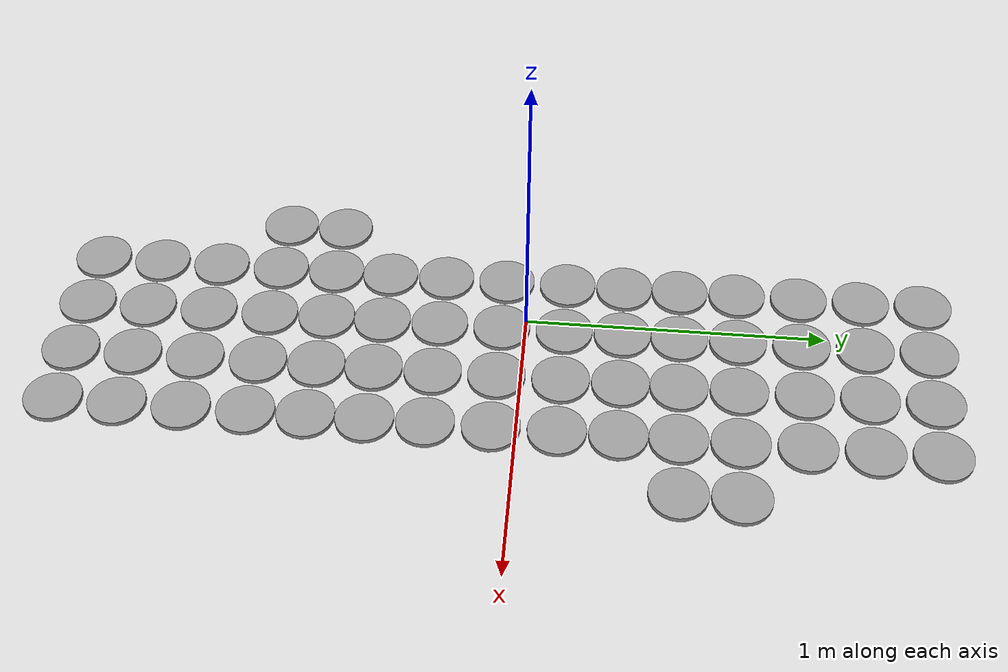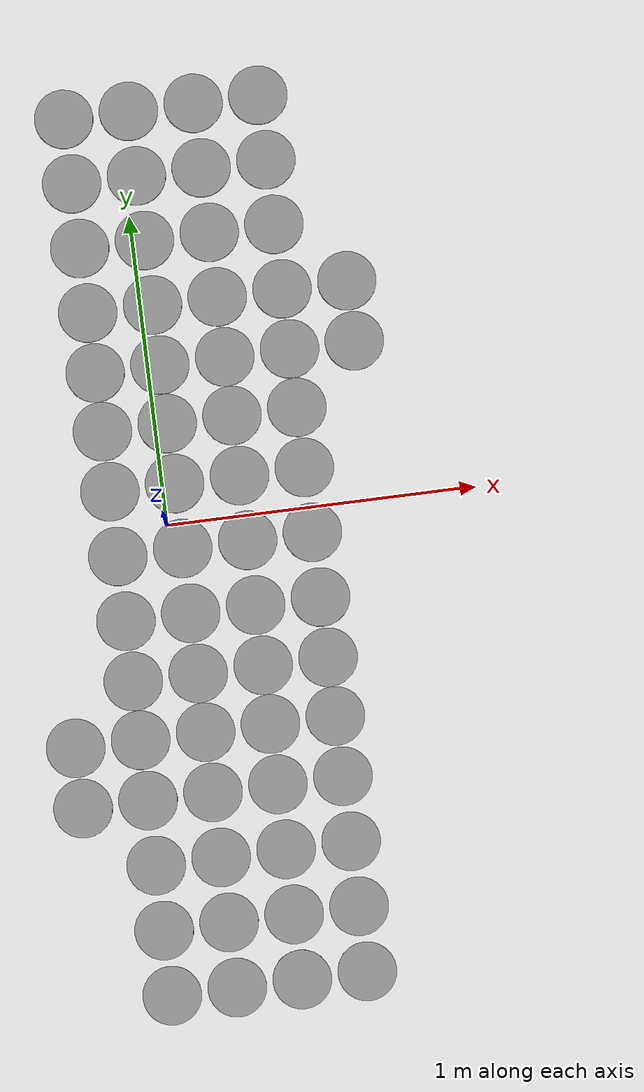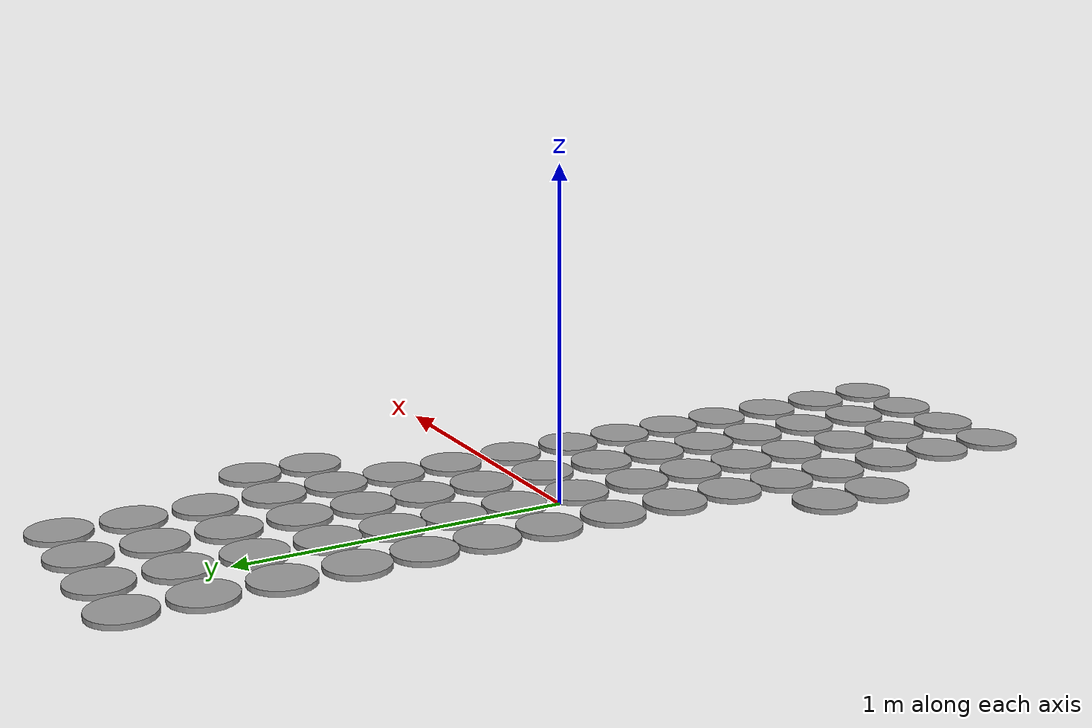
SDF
<sdf version="1.6">
 <world name="default">
  <model name="unit_cylinder_clone_115">
   <pose>-0.17 0.515077 0.008111 0 -0 0</pose>
   <link name="link">
    <inertial>
     <mass>1</mass>
     <inertia><ixx>0.145833</ixx><ixy>0</ixy><ixz>0</ixz><iyy>0.145833</iyy><iyz>0</iyz><izz>0.125</izz></inertia>
    </inertial>
    <collision name="collision">
     <geometry><cylinder><radius>0.0950718</radius><length>0.0162339</length></cylinder></geometry>
     <max_contacts>5</max_contacts>
    </collision>
    <visual name="visual">
     <geometry><cylinder><radius>0.0950718</radius><length>0.0162339</length></cylinder></geometry>
     <material>
      <script><name>Gazebo/Grey</name><uri>file://media/materials/scripts/gazebo.material</uri></script>
     </material>
    </visual>
   </link>
  </model>
  <model name="unit_cylinder_clone_116">
   <pose>-0.17 0.71 0.008111 0 -0 0</pose>
   <link name="link">
    <inertial>
     <mass>1</mass>
     <inertia><ixx>0.145833</ixx><ixy>0</ixy><ixz>0</ixz><iyy>0.145833</iyy><iyz>0</iyz><izz>0.125</izz></inertia>
    </inertial>
    <collision name="collision">
     <geometry><cylinder><radius>0.0950718</radius><length>0.0162339</length></cylinder></geometry>
     <max_contacts>5</max_contacts>
    </collision>
    <visual name="visual">
     <geometry><cylinder><radius>0.0950718</radius><length>0.0162339</length></cylinder></geometry>
     <material>
      <script><name>Gazebo/Grey</name><uri>file://media/materials/scripts/gazebo.material</uri></script>
     </material>
    </visual>
   </link>
  </model>
  <model name="unit_cylinder_clone_117">
   <pose>-0.17 0.92 0.008111 0 -0 0</pose>
   <link name="link">
    <inertial>
     <mass>1</mass>
     <inertia><ixx>0.145833</ixx><ixy>0</ixy><ixz>0</ixz><iyy>0.145833</iyy><iyz>0</iyz><izz>0.125</izz></inertia>
    </inertial>
    <collision name="collision">
     <geometry><cylinder><radius>0.0950718</radius><length>0.0162339</length></cylinder></geometry>
     <max_contacts>5</max_contacts>
    </collision>
    <visual name="visual">
     <geometry><cylinder><radius>0.0950718</radius><length>0.0162339</length></cylinder></geometry>
     <material>
      <script><name>Gazebo/Grey</name><uri>file://media/materials/scripts/gazebo.material</uri></script>
     </material>
    </visual>
   </link>
  </model>
  <model name="unit_cylinder_clone_118">
   <pose>-0.17 1.13 0.008111 0 -0 0</pose>
   <link name="link">
    <inertial>
     <mass>1</mass>
     <inertia><ixx>0.145833</ixx><ixy>0</ixy><ixz>0</ixz><iyy>0.145833</iyy><iyz>0</iyz><izz>0.125</izz></inertia>
    </inertial>
    <collision name="collision">
     <geometry><cylinder><radius>0.0950718</radius><length>0.0162339</length></cylinder></geometry>
     <max_contacts>5</max_contacts>
    </collision>
    <visual name="visual">
     <geometry><cylinder><radius>0.0950718</radius><length>0.0162339</length></cylinder></geometry>
     <material>
      <script><name>Gazebo/Grey</name><uri>file://media/materials/scripts/gazebo.material</uri></script>
     </material>
    </visual>
   </link>
  </model>
  <model name="unit_cylinder_clone_119">
   <pose>-0.17 1.34 0.008111 0 -0 0</pose>
   <link name="link">
    <inertial>
     <mass>1</mass>
     <inertia><ixx>0.145833</ixx><ixy>0</ixy><ixz>0</ixz><iyy>0.145833</iyy><iyz>0</iyz><izz>0.125</izz></inertia>
    </inertial>
    <collision name="collision">
     <geometry><cylinder><radius>0.0950718</radius><length>0.0162339</length></cylinder></geometry>
     <max_contacts>5</max_contacts>
    </collision>
    <visual name="visual">
     <geometry><cylinder><radius>0.0950718</radius><length>0.0162339</length></cylinder></geometry>
     <material>
      <script><name>Gazebo/Grey</name><uri>file://media/materials/scripts/gazebo.material</uri></script>
     </material>
    </visual>
   </link>
  </model>
  <model name="unit_cylinder_clone_120">
   <pose>0.04 0.515077 0.008111 0 -0 0</pose>
   <link name="link">
    <inertial>
     <mass>1</mass>
     <inertia><ixx>0.145833</ixx><ixy>0</ixy><ixz>0</ixz><iyy>0.145833</iyy><iyz>0</iyz><izz>0.125</izz></inertia>
    </inertial>
    <collision name="collision">
     <geometry><cylinder><radius>0.0950718</radius><length>0.0162339</length></cylinder></geometry>
     <max_contacts>5</max_contacts>
    </collision>
    <visual name="visual">
     <geometry><cylinder><radius>0.0950718</radius><length>0.0162339</length></cylinder></geometry>
     <material>
      <script><name>Gazebo/Grey</name><uri>file://media/materials/scripts/gazebo.material</uri></script>
     </material>
    </visual>
   </link>
  </model>
  <model name="unit_cylinder_clone_121">
   <pose>0.04 0.71 0.008111 0 -0 0</pose>
   <link name="link">
    <inertial>
     <mass>1</mass>
     <inertia><ixx>0.145833</ixx><ixy>0</ixy><ixz>0</ixz><iyy>0.145833</iyy><iyz>0</iyz><izz>0.125</izz></inertia>
    </inertial>
    <collision name="collision">
     <geometry><cylinder><radius>0.0950718</radius><length>0.0162339</length></cylinder></geometry>
     <max_contacts>5</max_contacts>
    </collision>
    <visual name="visual">
     <geometry><cylinder><radius>0.0950718</radius><length>0.0162339</length></cylinder></geometry>
     <material>
      <script><name>Gazebo/Grey</name><uri>file://media/materials/scripts/gazebo.material</uri></script>
     </material>
    </visual>
   </link>
  </model>
  <model name="unit_cylinder_clone_122">
   <pose>0.04 0.92 0.008111 0 -0 0</pose>
   <link name="link">
    <inertial>
     <mass>1</mass>
     <inertia><ixx>0.145833</ixx><ixy>0</ixy><ixz>0</ixz><iyy>0.145833</iyy><iyz>0</iyz><izz>0.125</izz></inertia>
    </inertial>
    <collision name="collision">
     <geometry><cylinder><radius>0.0950718</radius><length>0.0162339</length></cylinder></geometry>
     <max_contacts>5</max_contacts>
    </collision>
    <visual name="visual">
     <geometry><cylinder><radius>0.0950718</radius><length>0.0162339</length></cylinder></geometry>
     <material>
      <script><name>Gazebo/Grey</name><uri>file://media/materials/scripts/gazebo.material</uri></script>
     </material>
    </visual>
   </link>
  </model>
  <model name="unit_cylinder_clone_123">
   <pose>0.04 1.13 0.008111 0 -0 0</pose>
   <link name="link">
    <inertial>
     <mass>1</mass>
     <inertia><ixx>0.145833</ixx><ixy>0</ixy><ixz>0</ixz><iyy>0.145833</iyy><iyz>0</iyz><izz>0.125</izz></inertia>
    </inertial>
    <collision name="collision">
     <geometry><cylinder><radius>0.0950718</radius><length>0.0162339</length></cylinder></geometry>
     <max_contacts>5</max_contacts>
    </collision>
    <visual name="visual">
     <geometry><cylinder><radius>0.0950718</radius><length>0.0162339</length></cylinder></geometry>
     <material>
      <script><name>Gazebo/Grey</name><uri>file://media/materials/scripts/gazebo.material</uri></script>
     </material>
    </visual>
   </link>
  </model>
  <model name="unit_cylinder_clone_124">
   <pose>0.04 1.34 0.008111 0 -0 0</pose>
   <link name="link">
    <inertial>
     <mass>1</mass>
     <inertia><ixx>0.145833</ixx><ixy>0</ixy><ixz>0</ixz><iyy>0.145833</iyy><iyz>0</iyz><izz>0.125</izz></inertia>
    </inertial>
    <collision name="collision">
     <geometry><cylinder><radius>0.0950718</radius><length>0.0162339</length></cylinder></geometry>
     <max_contacts>5</max_contacts>
    </collision>
    <visual name="visual">
     <geometry><cylinder><radius>0.0950718</radius><length>0.0162339</length></cylinder></geometry>
     <material>
      <script><name>Gazebo/Grey</name><uri>file://media/materials/scripts/gazebo.material</uri></script>
     </material>
    </visual>
   </link>
  </model>
  <model name="unit_cylinder_clone_125">
   <pose>0.25 0.515077 0.008111 0 -0 0</pose>
   <link name="link">
    <inertial>
     <mass>1</mass>
     <inertia><ixx>0.145833</ixx><ixy>0</ixy><ixz>0</ixz><iyy>0.145833</iyy><iyz>0</iyz><izz>0.125</izz></inertia>
    </inertial>
    <collision name="collision">
     <geometry><cylinder><radius>0.0950718</radius><length>0.0162339</length></cylinder></geometry>
     <max_contacts>5</max_contacts>
    </collision>
    <visual name="visual">
     <geometry><cylinder><radius>0.0950718</radius><length>0.0162339</length></cylinder></geometry>
     <material>
      <script><name>Gazebo/Grey</name><uri>file://media/materials/scripts/gazebo.material</uri></script>
     </material>
    </visual>
   </link>
  </model>
  <model name="unit_cylinder_clone_126">
   <pose>0.25 0.71 0.008111 0 -0 0</pose>
   <link name="link">
    <inertial>
     <mass>1</mass>
     <inertia><ixx>0.145833</ixx><ixy>0</ixy><ixz>0</ixz><iyy>0.145833</iyy><iyz>0</iyz><izz>0.125</izz></inertia>
    </inertial>
    <collision name="collision">
     <geometry><cylinder><radius>0.0950718</radius><length>0.0162339</length></cylinder></geometry>
     <max_contacts>5</max_contacts>
    </collision>
    <visual name="visual">
     <geometry><cylinder><radius>0.0950718</radius><length>0.0162339</length></cylinder></geometry>
     <material>
      <script><name>Gazebo/Grey</name><uri>file://media/materials/scripts/gazebo.material</uri></script>
     </material>
    </visual>
   </link>
  </model>
  <model name="unit_cylinder_clone_127">
   <pose>0.25 0.92 0.008111 0 -0 0</pose>
   <link name="link">
    <inertial>
     <mass>1</mass>
     <inertia><ixx>0.145833</ixx><ixy>0</ixy><ixz>0</ixz><iyy>0.145833</iyy><iyz>0</iyz><izz>0.125</izz></inertia>
    </inertial>
    <collision name="collision">
     <geometry><cylinder><radius>0.0950718</radius><length>0.0162339</length></cylinder></geometry>
     <max_contacts>5</max_contacts>
    </collision>
    <visual name="visual">
     <geometry><cylinder><radius>0.0950718</radius><length>0.0162339</length></cylinder></geometry>
     <material>
      <script><name>Gazebo/Grey</name><uri>file://media/materials/scripts/gazebo.material</uri></script>
     </material>
    </visual>
   </link>
  </model>
  <model name="unit_cylinder_clone_128">
   <pose>0.25 1.13 0.008111 0 -0 0</pose>
   <link name="link">
    <inertial>
     <mass>1</mass>
     <inertia><ixx>0.145833</ixx><ixy>0</ixy><ixz>0</ixz><iyy>0.145833</iyy><iyz>0</iyz><izz>0.125</izz></inertia>
    </inertial>
    <collision name="collision">
     <geometry><cylinder><radius>0.0950718</radius><length>0.0162339</length></cylinder></geometry>
     <max_contacts>5</max_contacts>
    </collision>
    <visual name="visual">
     <geometry><cylinder><radius>0.0950718</radius><length>0.0162339</length></cylinder></geometry>
     <material>
      <script><name>Gazebo/Grey</name><uri>file://media/materials/scripts/gazebo.material</uri></script>
     </material>
    </visual>
   </link>
  </model>
  <model name="unit_cylinder_clone_129">
   <pose>0.25 1.34 0.008111 0 -0 0</pose>
   <link name="link">
    <inertial>
     <mass>1</mass>
     <inertia><ixx>0.145833</ixx><ixy>0</ixy><ixz>0</ixz><iyy>0.145833</iyy><iyz>0</iyz><izz>0.125</izz></inertia>
    </inertial>
    <collision name="collision">
     <geometry><cylinder><radius>0.0950718</radius><length>0.0162339</length></cylinder></geometry>
     <max_contacts>5</max_contacts>
    </collision>
    <visual name="visual">
     <geometry><cylinder><radius>0.0950718</radius><length>0.0162339</length></cylinder></geometry>
     <material>
      <script><name>Gazebo/Grey</name><uri>file://media/materials/scripts/gazebo.material</uri></script>
     </material>
    </visual>
   </link>
  </model>
  <model name="unit_cylinder_clone_130">
   <pose>0.46 0.515077 0.008111 0 -0 0</pose>
   <link name="link">
    <inertial>
     <mass>1</mass>
     <inertia><ixx>0.145833</ixx><ixy>0</ixy><ixz>0</ixz><iyy>0.145833</iyy><iyz>0</iyz><izz>0.125</izz></inertia>
    </inertial>
    <collision name="collision">
     <geometry><cylinder><radius>0.0950718</radius><length>0.0162339</length></cylinder></geometry>
     <max_contacts>5</max_contacts>
    </collision>
    <visual name="visual">
     <geometry><cylinder><radius>0.0950718</radius><length>0.0162339</length></cylinder></geometry>
     <material>
      <script><name>Gazebo/Grey</name><uri>file://media/materials/scripts/gazebo.material</uri></script>
     </material>
    </visual>
   </link>
  </model>
  <model name="unit_cylinder_clone_131">
   <pose>0.46 0.71 0.008111 0 -0 0</pose>
   <link name="link">
    <inertial>
     <mass>1</mass>
     <inertia><ixx>0.145833</ixx><ixy>0</ixy><ixz>0</ixz><iyy>0.145833</iyy><iyz>0</iyz><izz>0.125</izz></inertia>
    </inertial>
    <collision name="collision">
     <geometry><cylinder><radius>0.0950718</radius><length>0.0162339</length></cylinder></geometry>
     <max_contacts>5</max_contacts>
    </collision>
    <visual name="visual">
     <geometry><cylinder><radius>0.0950718</radius><length>0.0162339</length></cylinder></geometry>
     <material>
      <script><name>Gazebo/Grey</name><uri>file://media/materials/scripts/gazebo.material</uri></script>
     </material>
    </visual>
   </link>
  </model>
  <model name="unit_cylinder_clone_132">
   <pose>0.46 0.92 0.008111 0 -0 0</pose>
   <link name="link">
    <inertial>
     <mass>1</mass>
     <inertia><ixx>0.145833</ixx><ixy>0</ixy><ixz>0</ixz><iyy>0.145833</iyy><iyz>0</iyz><izz>0.125</izz></inertia>
    </inertial>
    <collision name="collision">
     <geometry><cylinder><radius>0.0950718</radius><length>0.0162339</length></cylinder></geometry>
     <max_contacts>5</max_contacts>
    </collision>
    <visual name="visual">
     <geometry><cylinder><radius>0.0950718</radius><length>0.0162339</length></cylinder></geometry>
     <material>
      <script><name>Gazebo/Grey</name><uri>file://media/materials/scripts/gazebo.material</uri></script>
     </material>
    </visual>
   </link>
  </model>
  <model name="unit_cylinder_clone_133">
   <pose>0.46 1.13 0.008111 0 -0 0</pose>
   <link name="link">
    <inertial>
     <mass>1</mass>
     <inertia><ixx>0.145833</ixx><ixy>0</ixy><ixz>0</ixz><iyy>0.145833</iyy><iyz>0</iyz><izz>0.125</izz></inertia>
    </inertial>
    <collision name="collision">
     <geometry><cylinder><radius>0.0950718</radius><length>0.0162339</length></cylinder></geometry>
     <max_contacts>5</max_contacts>
    </collision>
    <visual name="visual">
     <geometry><cylinder><radius>0.0950718</radius><length>0.0162339</length></cylinder></geometry>
     <material>
      <script><name>Gazebo/Grey</name><uri>file://media/materials/scripts/gazebo.material</uri></script>
     </material>
    </visual>
   </link>
  </model>
  <model name="unit_cylinder_clone_134">
   <pose>0.46 1.34 0.008111 0 -0 0</pose>
   <link name="link">
    <inertial>
     <mass>1</mass>
     <inertia><ixx>0.145833</ixx><ixy>0</ixy><ixz>0</ixz><iyy>0.145833</iyy><iyz>0</iyz><izz>0.125</izz></inertia>
    </inertial>
    <collision name="collision">
     <geometry><cylinder><radius>0.0950718</radius><length>0.0162339</length></cylinder></geometry>
     <max_contacts>5</max_contacts>
    </collision>
    <visual name="visual">
     <geometry><cylinder><radius>0.0950718</radius><length>0.0162339</length></cylinder></geometry>
     <material>
      <script><name>Gazebo/Grey</name><uri>file://media/materials/scripts/gazebo.material</uri></script>
     </material>
    </visual>
   </link>
  </model>
  <model name="unit_cylinder_clone_135">
   <pose>0.67 0.515077 0.008111 0 -0 0</pose>
   <link name="link">
    <inertial>
     <mass>1</mass>
     <inertia><ixx>0.145833</ixx><ixy>0</ixy><ixz>0</ixz><iyy>0.145833</iyy><iyz>0</iyz><izz>0.125</izz></inertia>
    </inertial>
    <collision name="collision">
     <geometry><cylinder><radius>0.0950718</radius><length>0.0162339</length></cylinder></geometry>
     <max_contacts>5</max_contacts>
    </collision>
    <visual name="visual">
     <geometry><cylinder><radius>0.0950718</radius><length>0.0162339</length></cylinder></geometry>
     <material>
      <script><name>Gazebo/Grey</name><uri>file://media/materials/scripts/gazebo.material</uri></script>
     </material>
    </visual>
   </link>
  </model>
  <model name="unit_cylinder_clone_136">
   <pose>0.67 0.71 0.008111 0 -0 0</pose>
   <link name="link">
    <inertial>
     <mass>1</mass>
     <inertia><ixx>0.145833</ixx><ixy>0</ixy><ixz>0</ixz><iyy>0.145833</iyy><iyz>0</iyz><izz>0.125</izz></inertia>
    </inertial>
    <collision name="collision">
     <geometry><cylinder><radius>0.0950718</radius><length>0.0162339</length></cylinder></geometry>
     <max_contacts>5</max_contacts>
    </collision>
    <visual name="visual">
     <geometry><cylinder><radius>0.0950718</radius><length>0.0162339</length></cylinder></geometry>
     <material>
      <script><name>Gazebo/Grey</name><uri>file://media/materials/scripts/gazebo.material</uri></script>
     </material>
    </visual>
   </link>
  </model>
  <model name="unit_cylinder_clone_365">
   <pose>-0.17 -0.484923 0.008111 0 -0 0</pose>
   <link name="link">
    <inertial>
     <mass>1</mass>
     <inertia><ixx>0.145833</ixx><ixy>0</ixy><ixz>0</ixz><iyy>0.145833</iyy><iyz>0</iyz><izz>0.125</izz></inertia>
    </inertial>
    <collision name="collision">
     <geometry><cylinder><radius>0.0950718</radius><length>0.0162339</length></cylinder></geometry>
     <max_contacts>5</max_contacts>
    </collision>
    <visual name="visual">
     <geometry><cylinder><radius>0.0950718</radius><length>0.0162339</length></cylinder></geometry>
     <material>
      <script><name>Gazebo/Grey</name><uri>file://media/materials/scripts/gazebo.material</uri></script>
     </material>
    </visual>
   </link>
  </model>
  <model name="unit_cylinder_clone_366">
   <pose>-0.17 -0.29 0.008111 0 -0 0</pose>
   <link name="link">
    <inertial>
     <mass>1</mass>
     <inertia><ixx>0.145833</ixx><ixy>0</ixy><ixz>0</ixz><iyy>0.145833</iyy><iyz>0</iyz><izz>0.125</izz></inertia>
    </inertial>
    <collision name="collision">
     <geometry><cylinder><radius>0.0950718</radius><length>0.0162339</length></cylinder></geometry>
     <max_contacts>5</max_contacts>
    </collision>
    <visual name="visual">
     <geometry><cylinder><radius>0.0950718</radius><length>0.0162339</length></cylinder></geometry>
     <material>
      <script><name>Gazebo/Grey</name><uri>file://media/materials/scripts/gazebo.material</uri></script>
     </material>
    </visual>
   </link>
  </model>
  <model name="unit_cylinder_clone_367">
   <pose>-0.17 -0.08 0.008111 0 -0 0</pose>
   <link name="link">
    <inertial>
     <mass>1</mass>
     <inertia><ixx>0.145833</ixx><ixy>0</ixy><ixz>0</ixz><iyy>0.145833</iyy><iyz>0</iyz><izz>0.125</izz></inertia>
    </inertial>
    <collision name="collision">
     <geometry><cylinder><radius>0.0950718</radius><length>0.0162339</length></cylinder></geometry>
     <max_contacts>5</max_contacts>
    </collision>
    <visual name="visual">
     <geometry><cylinder><radius>0.0950718</radius><length>0.0162339</length></cylinder></geometry>
     <material>
      <script><name>Gazebo/Grey</name><uri>file://media/materials/scripts/gazebo.material</uri></script>
     </material>
    </visual>
   </link>
  </model>
  <model name="unit_cylinder_clone_368">
   <pose>-0.17 0.13 0.008111 0 -0 0</pose>
   <link name="link">
    <inertial>
     <mass>1</mass>
     <inertia><ixx>0.145833</ixx><ixy>0</ixy><ixz>0</ixz><iyy>0.145833</iyy><iyz>0</iyz><izz>0.125</izz></inertia>
    </inertial>
    <collision name="collision">
     <geometry><cylinder><radius>0.0950718</radius><length>0.0162339</length></cylinder></geometry>
     <max_contacts>5</max_contacts>
    </collision>
    <visual name="visual">
     <geometry><cylinder><radius>0.0950718</radius><length>0.0162339</length></cylinder></geometry>
     <material>
      <script><name>Gazebo/Grey</name><uri>file://media/materials/scripts/gazebo.material</uri></script>
     </material>
    </visual>
   </link>
  </model>
  <model name="unit_cylinder_clone_369">
   <pose>-0.17 0.324923 0.008111 0 -0 0</pose>
   <link name="link">
    <inertial>
     <mass>1</mass>
     <inertia><ixx>0.145833</ixx><ixy>0</ixy><ixz>0</ixz><iyy>0.145833</iyy><iyz>0</iyz><izz>0.125</izz></inertia>
    </inertial>
    <collision name="collision">
     <geometry><cylinder><radius>0.0950718</radius><length>0.0162339</length></cylinder></geometry>
     <max_contacts>5</max_contacts>
    </collision>
    <visual name="visual">
     <geometry><cylinder><radius>0.0950718</radius><length>0.0162339</length></cylinder></geometry>
     <material>
      <script><name>Gazebo/Grey</name><uri>file://media/materials/scripts/gazebo.material</uri></script>
     </material>
    </visual>
   </link>
  </model>
  <model name="unit_cylinder_clone_370">
   <pose>0.04 -0.484923 0.008111 0 -0 0</pose>
   <link name="link">
    <inertial>
     <mass>1</mass>
     <inertia><ixx>0.145833</ixx><ixy>0</ixy><ixz>0</ixz><iyy>0.145833</iyy><iyz>0</iyz><izz>0.125</izz></inertia>
    </inertial>
    <collision name="collision">
     <geometry><cylinder><radius>0.0950718</radius><length>0.0162339</length></cylinder></geometry>
     <max_contacts>5</max_contacts>
    </collision>
    <visual name="visual">
     <geometry><cylinder><radius>0.0950718</radius><length>0.0162339</length></cylinder></geometry>
     <material>
      <script><name>Gazebo/Grey</name><uri>file://media/materials/scripts/gazebo.material</uri></script>
     </material>
    </visual>
   </link>
  </model>
  <model name="unit_cylinder_clone_371">
   <pose>0.04 -0.29 0.008111 0 -0 0</pose>
   <link name="link">
    <inertial>
     <mass>1</mass>
     <inertia><ixx>0.145833</ixx><ixy>0</ixy><ixz>0</ixz><iyy>0.145833</iyy><iyz>0</iyz><izz>0.125</izz></inertia>
    </inertial>
    <collision name="collision">
     <geometry><cylinder><radius>0.0950718</radius><length>0.0162339</length></cylinder></geometry>
     <max_contacts>5</max_contacts>
    </collision>
    <visual name="visual">
     <geometry><cylinder><radius>0.0950718</radius><length>0.0162339</length></cylinder></geometry>
     <material>
      <script><name>Gazebo/Grey</name><uri>file://media/materials/scripts/gazebo.material</uri></script>
     </material>
    </visual>
   </link>
  </model>
  <model name="unit_cylinder_clone_372">
   <pose>0.04 -0.08 0.008111 0 -0 0</pose>
   <link name="link">
    <inertial>
     <mass>1</mass>
     <inertia><ixx>0.145833</ixx><ixy>0</ixy><ixz>0</ixz><iyy>0.145833</iyy><iyz>0</iyz><izz>0.125</izz></inertia>
    </inertial>
    <collision name="collision">
     <geometry><cylinder><radius>0.0950718</radius><length>0.0162339</length></cylinder></geometry>
     <max_contacts>5</max_contacts>
    </collision>
    <visual name="visual">
     <geometry><cylinder><radius>0.0950718</radius><length>0.0162339</length></cylinder></geometry>
     <material>
      <script><name>Gazebo/Grey</name><uri>file://media/materials/scripts/gazebo.material</uri></script>
     </material>
    </visual>
   </link>
  </model>
  <model name="unit_cylinder_clone_373">
   <pose>0.04 0.13 0.008111 0 -0 0</pose>
   <link name="link">
    <inertial>
     <mass>1</mass>
     <inertia><ixx>0.145833</ixx><ixy>0</ixy><ixz>0</ixz><iyy>0.145833</iyy><iyz>0</iyz><izz>0.125</izz></inertia>
    </inertial>
    <collision name="collision">
     <geometry><cylinder><radius>0.0950718</radius><length>0.0162339</length></cylinder></geometry>
     <max_contacts>5</max_contacts>
    </collision>
    <visual name="visual">
     <geometry><cylinder><radius>0.0950718</radius><length>0.0162339</length></cylinder></geometry>
     <material>
      <script><name>Gazebo/Grey</name><uri>file://media/materials/scripts/gazebo.material</uri></script>
     </material>
    </visual>
   </link>
  </model>
  <model name="unit_cylinder_clone_374">
   <pose>0.04 0.324923 0.008111 0 -0 0</pose>
   <link name="link">
    <inertial>
     <mass>1</mass>
     <inertia><ixx>0.145833</ixx><ixy>0</ixy><ixz>0</ixz><iyy>0.145833</iyy><iyz>0</iyz><izz>0.125</izz></inertia>
    </inertial>
    <collision name="collision">
     <geometry><cylinder><radius>0.0950718</radius><length>0.0162339</length></cylinder></geometry>
     <max_contacts>5</max_contacts>
    </collision>
    <visual name="visual">
     <geometry><cylinder><radius>0.0950718</radius><length>0.0162339</length></cylinder></geometry>
     <material>
      <script><name>Gazebo/Grey</name><uri>file://media/materials/scripts/gazebo.material</uri></script>
     </material>
    </visual>
   </link>
  </model>
  <model name="unit_cylinder_clone_375">
   <pose>0.25 -0.484923 0.008111 0 -0 0</pose>
   <link name="link">
    <inertial>
     <mass>1</mass>
     <inertia><ixx>0.145833</ixx><ixy>0</ixy><ixz>0</ixz><iyy>0.145833</iyy><iyz>0</iyz><izz>0.125</izz></inertia>
    </inertial>
    <collision name="collision">
     <geometry><cylinder><radius>0.0950718</radius><length>0.0162339</length></cylinder></geometry>
     <max_contacts>5</max_contacts>
    </collision>
    <visual name="visual">
     <geometry><cylinder><radius>0.0950718</radius><length>0.0162339</length></cylinder></geometry>
     <material>
      <script><name>Gazebo/Grey</name><uri>file://media/materials/scripts/gazebo.material</uri></script>
     </material>
    </visual>
   </link>
  </model>
  <model name="unit_cylinder_clone_376">
   <pose>0.25 -0.29 0.008111 0 -0 0</pose>
   <link name="link">
    <inertial>
     <mass>1</mass>
     <inertia><ixx>0.145833</ixx><ixy>0</ixy><ixz>0</ixz><iyy>0.145833</iyy><iyz>0</iyz><izz>0.125</izz></inertia>
    </inertial>
    <collision name="collision">
     <geometry><cylinder><radius>0.0950718</radius><length>0.0162339</length></cylinder></geometry>
     <max_contacts>5</max_contacts>
    </collision>
    <visual name="visual">
     <geometry><cylinder><radius>0.0950718</radius><length>0.0162339</length></cylinder></geometry>
     <material>
      <script><name>Gazebo/Grey</name><uri>file://media/materials/scripts/gazebo.material</uri></script>
     </material>
    </visual>
   </link>
  </model>
  <model name="unit_cylinder_clone_377">
   <pose>0.25 -0.08 0.008111 0 -0 0</pose>
   <link name="link">
    <inertial>
     <mass>1</mass>
     <inertia><ixx>0.145833</ixx><ixy>0</ixy><ixz>0</ixz><iyy>0.145833</iyy><iyz>0</iyz><izz>0.125</izz></inertia>
    </inertial>
    <collision name="collision">
     <geometry><cylinder><radius>0.0950718</radius><length>0.0162339</length></cylinder></geometry>
     <max_contacts>5</max_contacts>
    </collision>
    <visual name="visual">
     <geometry><cylinder><radius>0.0950718</radius><length>0.0162339</length></cylinder></geometry>
     <material>
      <script><name>Gazebo/Grey</name><uri>file://media/materials/scripts/gazebo.material</uri></script>
     </material>
    </visual>
   </link>
  </model>
  <model name="unit_cylinder_clone_378">
   <pose>0.25 0.13 0.008111 0 -0 0</pose>
   <link name="link">
    <inertial>
     <mass>1</mass>
     <inertia><ixx>0.145833</ixx><ixy>0</ixy><ixz>0</ixz><iyy>0.145833</iyy><iyz>0</iyz><izz>0.125</izz></inertia>
    </inertial>
    <collision name="collision">
     <geometry><cylinder><radius>0.0950718</radius><length>0.0162339</length></cylinder></geometry>
     <max_contacts>5</max_contacts>
    </collision>
    <visual name="visual">
     <geometry><cylinder><radius>0.0950718</radius><length>0.0162339</length></cylinder></geometry>
     <material>
      <script><name>Gazebo/Grey</name><uri>file://media/materials/scripts/gazebo.material</uri></script>
     </material>
    </visual>
   </link>
  </model>
  <model name="unit_cylinder_clone_379">
   <pose>0.25 0.324923 0.008111 0 -0 0</pose>
   <link name="link">
    <inertial>
     <mass>1</mass>
     <inertia><ixx>0.145833</ixx><ixy>0</ixy><ixz>0</ixz><iyy>0.145833</iyy><iyz>0</iyz><izz>0.125</izz></inertia>
    </inertial>
    <collision name="collision">
     <geometry><cylinder><radius>0.0950718</radius><length>0.0162339</length></cylinder></geometry>
     <max_contacts>5</max_contacts>
    </collision>
    <visual name="visual">
     <geometry><cylinder><radius>0.0950718</radius><length>0.0162339</length></cylinder></geometry>
     <material>
      <script><name>Gazebo/Grey</name><uri>file://media/materials/scripts/gazebo.material</uri></script>
     </material>
    </visual>
   </link>
  </model>
  <model name="unit_cylinder_clone_380">
   <pose>0.46 -0.484923 0.008111 0 -0 0</pose>
   <link name="link">
    <inertial>
     <mass>1</mass>
     <inertia><ixx>0.145833</ixx><ixy>0</ixy><ixz>0</ixz><iyy>0.145833</iyy><iyz>0</iyz><izz>0.125</izz></inertia>
    </inertial>
    <collision name="collision">
     <geometry><cylinder><radius>0.0950718</radius><length>0.0162339</length></cylinder></geometry>
     <max_contacts>5</max_contacts>
    </collision>
    <visual name="visual">
     <geometry><cylinder><radius>0.0950718</radius><length>0.0162339</length></cylinder></geometry>
     <material>
      <script><name>Gazebo/Grey</name><uri>file://media/materials/scripts/gazebo.material</uri></script>
     </material>
    </visual>
   </link>
  </model>
  <model name="unit_cylinder_clone_381">
   <pose>0.46 -0.29 0.008111 0 -0 0</pose>
   <link name="link">
    <inertial>
     <mass>1</mass>
     <inertia><ixx>0.145833</ixx><ixy>0</ixy><ixz>0</ixz><iyy>0.145833</iyy><iyz>0</iyz><izz>0.125</izz></inertia>
    </inertial>
    <collision name="collision">
     <geometry><cylinder><radius>0.0950718</radius><length>0.0162339</length></cylinder></geometry>
     <max_contacts>5</max_contacts>
    </collision>
    <visual name="visual">
     <geometry><cylinder><radius>0.0950718</radius><length>0.0162339</length></cylinder></geometry>
     <material>
      <script><name>Gazebo/Grey</name><uri>file://media/materials/scripts/gazebo.material</uri></script>
     </material>
    </visual>
   </link>
  </model>
  <model name="unit_cylinder_clone_382">
   <pose>0.46 -0.08 0.008111 0 -0 0</pose>
   <link name="link">
    <inertial>
     <mass>1</mass>
     <inertia><ixx>0.145833</ixx><ixy>0</ixy><ixz>0</ixz><iyy>0.145833</iyy><iyz>0</iyz><izz>0.125</izz></inertia>
    </inertial>
    <collision name="collision">
     <geometry><cylinder><radius>0.0950718</radius><length>0.0162339</length></cylinder></geometry>
     <max_contacts>5</max_contacts>
    </collision>
    <visual name="visual">
     <geometry><cylinder><radius>0.0950718</radius><length>0.0162339</length></cylinder></geometry>
     <material>
      <script><name>Gazebo/Grey</name><uri>file://media/materials/scripts/gazebo.material</uri></script>
     </material>
    </visual>
   </link>
  </model>
  <model name="unit_cylinder_clone_383">
   <pose>0.46 0.13 0.008111 0 -0 0</pose>
   <link name="link">
    <inertial>
     <mass>1</mass>
     <inertia><ixx>0.145833</ixx><ixy>0</ixy><ixz>0</ixz><iyy>0.145833</iyy><iyz>0</iyz><izz>0.125</izz></inertia>
    </inertial>
    <collision name="collision">
     <geometry><cylinder><radius>0.0950718</radius><length>0.0162339</length></cylinder></geometry>
     <max_contacts>5</max_contacts>
    </collision>
    <visual name="visual">
     <geometry><cylinder><radius>0.0950718</radius><length>0.0162339</length></cylinder></geometry>
     <material>
      <script><name>Gazebo/Grey</name><uri>file://media/materials/scripts/gazebo.material</uri></script>
     </material>
    </visual>
   </link>
  </model>
  <model name="unit_cylinder_clone_384">
   <pose>0.46 0.324923 0.008111 0 -0 0</pose>
   <link name="link">
    <inertial>
     <mass>1</mass>
     <inertia><ixx>0.145833</ixx><ixy>0</ixy><ixz>0</ixz><iyy>0.145833</iyy><iyz>0</iyz><izz>0.125</izz></inertia>
    </inertial>
    <collision name="collision">
     <geometry><cylinder><radius>0.0950718</radius><length>0.0162339</length></cylinder></geometry>
     <max_contacts>5</max_contacts>
    </collision>
    <visual name="visual">
     <geometry><cylinder><radius>0.0950718</radius><length>0.0162339</length></cylinder></geometry>
     <material>
      <script><name>Gazebo/Grey</name><uri>file://media/materials/scripts/gazebo.material</uri></script>
     </material>
    </visual>
   </link>
  </model>
  <model name="unit_cylinder_clone_613">
   <pose>-0.38 -0.87 0.008111 0 -0 0</pose>
   <link name="link">
    <inertial>
     <mass>1</mass>
     <inertia><ixx>0.145833</ixx><ixy>0</ixy><ixz>0</ixz><iyy>0.145833</iyy><iyz>0</iyz><izz>0.125</izz></inertia>
    </inertial>
    <collision name="collision">
     <geometry><cylinder><radius>0.0950718</radius><length>0.0162339</length></cylinder></geometry>
     <max_contacts>5</max_contacts>
    </collision>
    <visual name="visual">
     <geometry><cylinder><radius>0.0950718</radius><length>0.0162339</length></cylinder></geometry>
     <material>
      <script><name>Gazebo/Grey</name><uri>file://media/materials/scripts/gazebo.material</uri></script>
     </material>
    </visual>
   </link>
  </model>
  <model name="unit_cylinder_clone_614">
   <pose>-0.38 -0.675077 0.008111 0 -0 0</pose>
   <link name="link">
    <inertial>
     <mass>1</mass>
     <inertia><ixx>0.145833</ixx><ixy>0</ixy><ixz>0</ixz><iyy>0.145833</iyy><iyz>0</iyz><izz>0.125</izz></inertia>
    </inertial>
    <collision name="collision">
     <geometry><cylinder><radius>0.0950718</radius><length>0.0162339</length></cylinder></geometry>
     <max_contacts>5</max_contacts>
    </collision>
    <visual name="visual">
     <geometry><cylinder><radius>0.0950718</radius><length>0.0162339</length></cylinder></geometry>
     <material>
      <script><name>Gazebo/Grey</name><uri>file://media/materials/scripts/gazebo.material</uri></script>
     </material>
    </visual>
   </link>
  </model>
  <model name="unit_cylinder_clone_615">
   <pose>-0.17 -1.5 0.008111 0 -0 0</pose>
   <link name="link">
    <inertial>
     <mass>1</mass>
     <inertia><ixx>0.145833</ixx><ixy>0</ixy><ixz>0</ixz><iyy>0.145833</iyy><iyz>0</iyz><izz>0.125</izz></inertia>
    </inertial>
    <collision name="collision">
     <geometry><cylinder><radius>0.0950718</radius><length>0.0162339</length></cylinder></geometry>
     <max_contacts>5</max_contacts>
    </collision>
    <visual name="visual">
     <geometry><cylinder><radius>0.0950718</radius><length>0.0162339</length></cylinder></geometry>
     <material>
      <script><name>Gazebo/Grey</name><uri>file://media/materials/scripts/gazebo.material</uri></script>
     </material>
    </visual>
   </link>
  </model>
  <model name="unit_cylinder_clone_616">
   <pose>-0.17 -1.29 0.008111 0 -0 0</pose>
   <link name="link">
    <inertial>
     <mass>1</mass>
     <inertia><ixx>0.145833</ixx><ixy>0</ixy><ixz>0</ixz><iyy>0.145833</iyy><iyz>0</iyz><izz>0.125</izz></inertia>
    </inertial>
    <collision name="collision">
     <geometry><cylinder><radius>0.0950718</radius><length>0.0162339</length></cylinder></geometry>
     <max_contacts>5</max_contacts>
    </collision>
    <visual name="visual">
     <geometry><cylinder><radius>0.0950718</radius><length>0.0162339</length></cylinder></geometry>
     <material>
      <script><name>Gazebo/Grey</name><uri>file://media/materials/scripts/gazebo.material</uri></script>
     </material>
    </visual>
   </link>
  </model>
  <model name="unit_cylinder_clone_617">
   <pose>-0.17 -1.08 0.008111 0 -0 0</pose>
   <link name="link">
    <inertial>
     <mass>1</mass>
     <inertia><ixx>0.145833</ixx><ixy>0</ixy><ixz>0</ixz><iyy>0.145833</iyy><iyz>0</iyz><izz>0.125</izz></inertia>
    </inertial>
    <collision name="collision">
     <geometry><cylinder><radius>0.0950718</radius><length>0.0162339</length></cylinder></geometry>
     <max_contacts>5</max_contacts>
    </collision>
    <visual name="visual">
     <geometry><cylinder><radius>0.0950718</radius><length>0.0162339</length></cylinder></geometry>
     <material>
      <script><name>Gazebo/Grey</name><uri>file://media/materials/scripts/gazebo.material</uri></script>
     </material>
    </visual>
   </link>
  </model>
  <model name="unit_cylinder_clone_618">
   <pose>-0.17 -0.87 0.008111 0 -0 0</pose>
   <link name="link">
    <inertial>
     <mass>1</mass>
     <inertia><ixx>0.145833</ixx><ixy>0</ixy><ixz>0</ixz><iyy>0.145833</iyy><iyz>0</iyz><izz>0.125</izz></inertia>
    </inertial>
    <collision name="collision">
     <geometry><cylinder><radius>0.0950718</radius><length>0.0162339</length></cylinder></geometry>
     <max_contacts>5</max_contacts>
    </collision>
    <visual name="visual">
     <geometry><cylinder><radius>0.0950718</radius><length>0.0162339</length></cylinder></geometry>
     <material>
      <script><name>Gazebo/Grey</name><uri>file://media/materials/scripts/gazebo.material</uri></script>
     </material>
    </visual>
   </link>
  </model>
  <model name="unit_cylinder_clone_619">
   <pose>-0.17 -0.675077 0.008111 0 -0 0</pose>
   <link name="link">
    <inertial>
     <mass>1</mass>
     <inertia><ixx>0.145833</ixx><ixy>0</ixy><ixz>0</ixz><iyy>0.145833</iyy><iyz>0</iyz><izz>0.125</izz></inertia>
    </inertial>
    <collision name="collision">
     <geometry><cylinder><radius>0.0950718</radius><length>0.0162339</length></cylinder></geometry>
     <max_contacts>5</max_contacts>
    </collision>
    <visual name="visual">
     <geometry><cylinder><radius>0.0950718</radius><length>0.0162339</length></cylinder></geometry>
     <material>
      <script><name>Gazebo/Grey</name><uri>file://media/materials/scripts/gazebo.material</uri></script>
     </material>
    </visual>
   </link>
  </model>
  <model name="unit_cylinder_clone_620">
   <pose>0.04 -1.5 0.008111 0 -0 0</pose>
   <link name="link">
    <inertial>
     <mass>1</mass>
     <inertia><ixx>0.145833</ixx><ixy>0</ixy><ixz>0</ixz><iyy>0.145833</iyy><iyz>0</iyz><izz>0.125</izz></inertia>
    </inertial>
    <collision name="collision">
     <geometry><cylinder><radius>0.0950718</radius><length>0.0162339</length></cylinder></geometry>
     <max_contacts>5</max_contacts>
    </collision>
    <visual name="visual">
     <geometry><cylinder><radius>0.0950718</radius><length>0.0162339</length></cylinder></geometry>
     <material>
      <script><name>Gazebo/Grey</name><uri>file://media/materials/scripts/gazebo.material</uri></script>
     </material>
    </visual>
   </link>
  </model>
  <model name="unit_cylinder_clone_621">
   <pose>0.04 -1.29 0.008111 0 -0 0</pose>
   <link name="link">
    <inertial>
     <mass>1</mass>
     <inertia><ixx>0.145833</ixx><ixy>0</ixy><ixz>0</ixz><iyy>0.145833</iyy><iyz>0</iyz><izz>0.125</izz></inertia>
    </inertial>
    <collision name="collision">
     <geometry><cylinder><radius>0.0950718</radius><length>0.0162339</length></cylinder></geometry>
     <max_contacts>5</max_contacts>
    </collision>
    <visual name="visual">
     <geometry><cylinder><radius>0.0950718</radius><length>0.0162339</length></cylinder></geometry>
     <material>
      <script><name>Gazebo/Grey</name><uri>file://media/materials/scripts/gazebo.material</uri></script>
     </material>
    </visual>
   </link>
  </model>
  <model name="unit_cylinder_clone_622">
   <pose>0.04 -1.08 0.008111 0 -0 0</pose>
   <link name="link">
    <inertial>
     <mass>1</mass>
     <inertia><ixx>0.145833</ixx><ixy>0</ixy><ixz>0</ixz><iyy>0.145833</iyy><iyz>0</iyz><izz>0.125</izz></inertia>
    </inertial>
    <collision name="collision">
     <geometry><cylinder><radius>0.0950718</radius><length>0.0162339</length></cylinder></geometry>
     <max_contacts>5</max_contacts>
    </collision>
    <visual name="visual">
     <geometry><cylinder><radius>0.0950718</radius><length>0.0162339</length></cylinder></geometry>
     <material>
      <script><name>Gazebo/Grey</name><uri>file://media/materials/scripts/gazebo.material</uri></script>
     </material>
    </visual>
   </link>
  </model>
  <model name="unit_cylinder_clone_623">
   <pose>0.04 -0.87 0.008111 0 -0 0</pose>
   <link name="link">
    <inertial>
     <mass>1</mass>
     <inertia><ixx>0.145833</ixx><ixy>0</ixy><ixz>0</ixz><iyy>0.145833</iyy><iyz>0</iyz><izz>0.125</izz></inertia>
    </inertial>
    <collision name="collision">
     <geometry><cylinder><radius>0.0950718</radius><length>0.0162339</length></cylinder></geometry>
     <max_contacts>5</max_contacts>
    </collision>
    <visual name="visual">
     <geometry><cylinder><radius>0.0950718</radius><length>0.0162339</length></cylinder></geometry>
     <material>
      <script><name>Gazebo/Grey</name><uri>file://media/materials/scripts/gazebo.material</uri></script>
     </material>
    </visual>
   </link>
  </model>
  <model name="unit_cylinder_clone_624">
   <pose>0.04 -0.675077 0.008111 0 -0 0</pose>
   <link name="link">
    <inertial>
     <mass>1</mass>
     <inertia><ixx>0.145833</ixx><ixy>0</ixy><ixz>0</ixz><iyy>0.145833</iyy><iyz>0</iyz><izz>0.125</izz></inertia>
    </inertial>
    <collision name="collision">
     <geometry><cylinder><radius>0.0950718</radius><length>0.0162339</length></cylinder></geometry>
     <max_contacts>5</max_contacts>
    </collision>
    <visual name="visual">
     <geometry><cylinder><radius>0.0950718</radius><length>0.0162339</length></cylinder></geometry>
     <material>
      <script><name>Gazebo/Grey</name><uri>file://media/materials/scripts/gazebo.material</uri></script>
     </material>
    </visual>
   </link>
  </model>
  <model name="unit_cylinder_clone_625">
   <pose>0.25 -1.5 0.008111 0 -0 0</pose>
   <link name="link">
    <inertial>
     <mass>1</mass>
     <inertia><ixx>0.145833</ixx><ixy>0</ixy><ixz>0</ixz><iyy>0.145833</iyy><iyz>0</iyz><izz>0.125</izz></inertia>
    </inertial>
    <collision name="collision">
     <geometry><cylinder><radius>0.0950718</radius><length>0.0162339</length></cylinder></geometry>
     <max_contacts>5</max_contacts>
    </collision>
    <visual name="visual">
     <geometry><cylinder><radius>0.0950718</radius><length>0.0162339</length></cylinder></geometry>
     <material>
      <script><name>Gazebo/Grey</name><uri>file://media/materials/scripts/gazebo.material</uri></script>
     </material>
    </visual>
   </link>
  </model>
  <model name="unit_cylinder_clone_626">
   <pose>0.25 -1.29 0.008111 0 -0 0</pose>
   <link name="link">
    <inertial>
     <mass>1</mass>
     <inertia><ixx>0.145833</ixx><ixy>0</ixy><ixz>0</ixz><iyy>0.145833</iyy><iyz>0</iyz><izz>0.125</izz></inertia>
    </inertial>
    <collision name="collision">
     <geometry><cylinder><radius>0.0950718</radius><length>0.0162339</length></cylinder></geometry>
     <max_contacts>5</max_contacts>
    </collision>
    <visual name="visual">
     <geometry><cylinder><radius>0.0950718</radius><length>0.0162339</length></cylinder></geometry>
     <material>
      <script><name>Gazebo/Grey</name><uri>file://media/materials/scripts/gazebo.material</uri></script>
     </material>
    </visual>
   </link>
  </model>
  <model name="unit_cylinder_clone_627">
   <pose>0.25 -1.08 0.008111 0 -0 0</pose>
   <link name="link">
    <inertial>
     <mass>1</mass>
     <inertia><ixx>0.145833</ixx><ixy>0</ixy><ixz>0</ixz><iyy>0.145833</iyy><iyz>0</iyz><izz>0.125</izz></inertia>
    </inertial>
    <collision name="collision">
     <geometry><cylinder><radius>0.0950718</radius><length>0.0162339</length></cylinder></geometry>
     <max_contacts>5</max_contacts>
    </collision>
    <visual name="visual">
     <geometry><cylinder><radius>0.0950718</radius><length>0.0162339</length></cylinder></geometry>
     <material>
      <script><name>Gazebo/Grey</name><uri>file://media/materials/scripts/gazebo.material</uri></script>
     </material>
    </visual>
   </link>
  </model>
  <model name="unit_cylinder_clone_628">
   <pose>0.25 -0.87 0.008111 0 -0 0</pose>
   <link name="link">
    <inertial>
     <mass>1</mass>
     <inertia><ixx>0.145833</ixx><ixy>0</ixy><ixz>0</ixz><iyy>0.145833</iyy><iyz>0</iyz><izz>0.125</izz></inertia>
    </inertial>
    <collision name="collision">
     <geometry><cylinder><radius>0.0950718</radius><length>0.0162339</length></cylinder></geometry>
     <max_contacts>5</max_contacts>
    </collision>
    <visual name="visual">
     <geometry><cylinder><radius>0.0950718</radius><length>0.0162339</length></cylinder></geometry>
     <material>
      <script><name>Gazebo/Grey</name><uri>file://media/materials/scripts/gazebo.material</uri></script>
     </material>
    </visual>
   </link>
  </model>
  <model name="unit_cylinder_clone_629">
   <pose>0.25 -0.675077 0.008111 0 -0 0</pose>
   <link name="link">
    <inertial>
     <mass>1</mass>
     <inertia><ixx>0.145833</ixx><ixy>0</ixy><ixz>0</ixz><iyy>0.145833</iyy><iyz>0</iyz><izz>0.125</izz></inertia>
    </inertial>
    <collision name="collision">
     <geometry><cylinder><radius>0.0950718</radius><length>0.0162339</length></cylinder></geometry>
     <max_contacts>5</max_contacts>
    </collision>
    <visual name="visual">
     <geometry><cylinder><radius>0.0950718</radius><length>0.0162339</length></cylinder></geometry>
     <material>
      <script><name>Gazebo/Grey</name><uri>file://media/materials/scripts/gazebo.material</uri></script>
     </material>
    </visual>
   </link>
  </model>
  <model name="unit_cylinder_clone_630">
   <pose>0.46 -1.5 0.008111 0 -0 0</pose>
   <link name="link">
    <inertial>
     <mass>1</mass>
     <inertia><ixx>0.145833</ixx><ixy>0</ixy><ixz>0</ixz><iyy>0.145833</iyy><iyz>0</iyz><izz>0.125</izz></inertia>
    </inertial>
    <collision name="collision">
     <geometry><cylinder><radius>0.0950718</radius><length>0.0162339</length></cylinder></geometry>
     <max_contacts>5</max_contacts>
    </collision>
    <visual name="visual">
     <geometry><cylinder><radius>0.0950718</radius><length>0.0162339</length></cylinder></geometry>
     <material>
      <script><name>Gazebo/Grey</name><uri>file://media/materials/scripts/gazebo.material</uri></script>
     </material>
    </visual>
   </link>
  </model>
  <model name="unit_cylinder_clone_631">
   <pose>0.46 -1.29 0.008111 0 -0 0</pose>
   <link name="link">
    <inertial>
     <mass>1</mass>
     <inertia><ixx>0.145833</ixx><ixy>0</ixy><ixz>0</ixz><iyy>0.145833</iyy><iyz>0</iyz><izz>0.125</izz></inertia>
    </inertial>
    <collision name="collision">
     <geometry><cylinder><radius>0.0950718</radius><length>0.0162339</length></cylinder></geometry>
     <max_contacts>5</max_contacts>
    </collision>
    <visual name="visual">
     <geometry><cylinder><radius>0.0950718</radius><length>0.0162339</length></cylinder></geometry>
     <material>
      <script><name>Gazebo/Grey</name><uri>file://media/materials/scripts/gazebo.material</uri></script>
     </material>
    </visual>
   </link>
  </model>
  <model name="unit_cylinder_clone_632">
   <pose>0.46 -1.08 0.008111 0 -0 0</pose>
   <link name="link">
    <inertial>
     <mass>1</mass>
     <inertia><ixx>0.145833</ixx><ixy>0</ixy><ixz>0</ixz><iyy>0.145833</iyy><iyz>0</iyz><izz>0.125</izz></inertia>
    </inertial>
    <collision name="collision">
     <geometry><cylinder><radius>0.0950718</radius><length>0.0162339</length></cylinder></geometry>
     <max_contacts>5</max_contacts>
    </collision>
    <visual name="visual">
     <geometry><cylinder><radius>0.0950718</radius><length>0.0162339</length></cylinder></geometry>
     <material>
      <script><name>Gazebo/Grey</name><uri>file://media/materials/scripts/gazebo.material</uri></script>
     </material>
    </visual>
   </link>
  </model>
  <model name="unit_cylinder_clone_633">
   <pose>0.46 -0.87 0.008111 0 -0 0</pose>
   <link name="link">
    <inertial>
     <mass>1</mass>
     <inertia><ixx>0.145833</ixx><ixy>0</ixy><ixz>0</ixz><iyy>0.145833</iyy><iyz>0</iyz><izz>0.125</izz></inertia>
    </inertial>
    <collision name="collision">
     <geometry><cylinder><radius>0.0950718</radius><length>0.0162339</length></cylinder></geometry>
     <max_contacts>5</max_contacts>
    </collision>
    <visual name="visual">
     <geometry><cylinder><radius>0.0950718</radius><length>0.0162339</length></cylinder></geometry>
     <material>
      <script><name>Gazebo/Grey</name><uri>file://media/materials/scripts/gazebo.material</uri></script>
     </material>
    </visual>
   </link>
  </model>
  <model name="unit_cylinder_clone_634">
   <pose>0.46 -0.675077 0.008111 0 -0 0</pose>
   <link name="link">
    <inertial>
     <mass>1</mass>
     <inertia><ixx>0.145833</ixx><ixy>0</ixy><ixz>0</ixz><iyy>0.145833</iyy><iyz>0</iyz><izz>0.125</izz></inertia>
    </inertial>
    <collision name="collision">
     <geometry><cylinder><radius>0.0950718</radius><length>0.0162339</length></cylinder></geometry>
     <max_contacts>5</max_contacts>
    </collision>
    <visual name="visual">
     <geometry><cylinder><radius>0.0950718</radius><length>0.0162339</length></cylinder></geometry>
     <material>
      <script><name>Gazebo/Grey</name><uri>file://media/materials/scripts/gazebo.material</uri></script>
     </material>
    </visual>
   </link>
  </model>
 </world>
</sdf>
